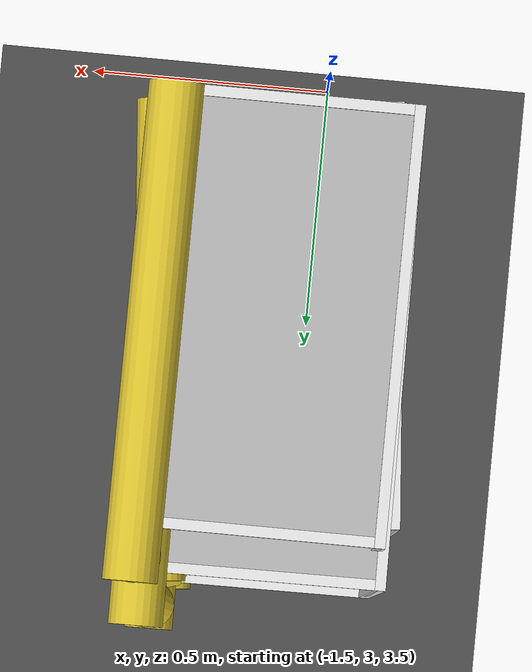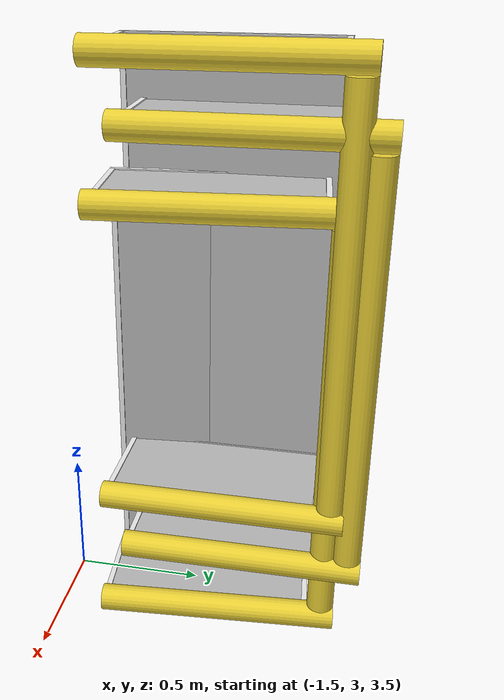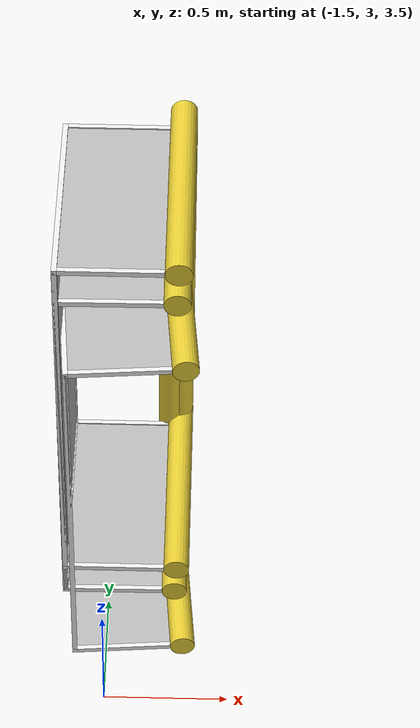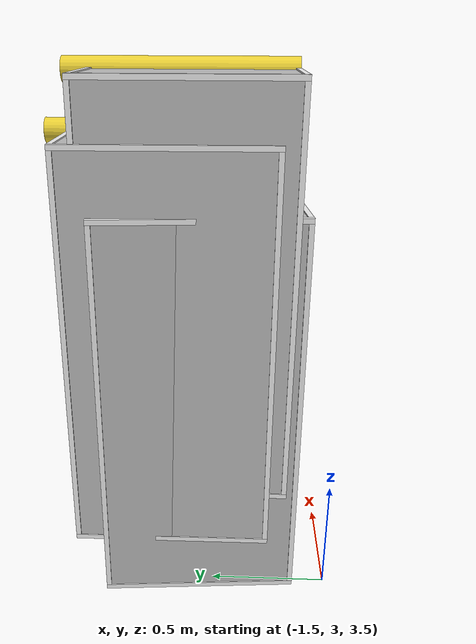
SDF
<sdf version="1.4">
 <world name="default">
  <model name="ground_plane">
   <static>1</static>
   <link name="link">
    <collision name="collision">
     <geometry><plane><normal>0 0 1</normal><size>100 100</size></plane></geometry>
     <surface><friction><ode><mu>100</mu><mu2>50</mu2></ode></friction></surface>
    </collision>
    <visual name="visual">
     <cast_shadows>0</cast_shadows>
     <geometry><plane><normal>0 0 1</normal><size>100 100</size></plane></geometry>
     <material>
      <script><uri>file://media/materials/scripts/gazebo.material</uri><name>Gazebo/Grey</name></script>
     </material>
    </visual>
    <velocity_decay><linear>0</linear><angular>0</angular></velocity_decay>
   </link>
  </model>
  <model name="asphalt_plane_0">
   <static>1</static>
   <link name="link">
    <collision name="collision"><geometry><box><size>20 20 0.1</size></box></geometry></collision>
    <visual name="visual">
     <cast_shadows>0</cast_shadows>
     <geometry><box><size>20 20 0.1</size></box></geometry>
     <material>
      <script>
       <uri>model://asphalt_plane/materials/scripts</uri>
       <uri>model://asphalt_plane/materials/textures</uri>
       <name>vrc/asphalt</name>
      </script>
     </material>
    </visual>
    <velocity_decay><linear>0</linear><angular>0</angular></velocity_decay>
   </link>
   <pose>-0.08673 -0.042897 0 0 -0 0</pose>
  </model>
  <model name="RoboCup 2014 SPL Goal_1">
   <static>1</static>
   <link name="left_post">
    <pose>0 0.8 0.45 0 -0 0</pose>
    <collision name="collision">
     <geometry><cylinder><radius>0.05</radius><length>0.9</length></cylinder></geometry>
    </collision>
    <visual name="visual">
     <geometry><cylinder><radius>0.05</radius><length>0.9</length></cylinder></geometry>
     <material>
      <script><uri>file://media/materials/scripts/gazebo.material</uri><name>Gazebo/ZincYellow</name></script>
     </material>
    </visual>
    <velocity_decay><linear>0</linear><angular>0</angular></velocity_decay>
   </link>
   <link name="left_support_horiz_lower">
    <pose>0.24 0.8 0.01 0 -0 0</pose>
    <collision name="collision"><geometry><box><size>0.38 0.02 0.02</size></box></geometry></collision>
    <visual name="visual">
     <geometry><box><size>0.38 0.02 0.02</size></box></geometry>
     <material>
      <script><uri>file://media/materials/scripts/gazebo.material</uri><name>Gazebo/White</name></script>
     </material>
    </visual>
    <velocity_decay><linear>0</linear><angular>0</angular></velocity_decay>
   </link>
   <link name="left_support_horiz_upper">
    <pose>0.24 0.8 0.79 0 -0 0</pose>
    <collision name="collision"><geometry><box><size>0.38 0.02 0.02</size></box></geometry></collision>
    <visual name="visual">
     <geometry><box><size>0.38 0.02 0.02</size></box></geometry>
     <material>
      <script><uri>file://media/materials/scripts/gazebo.material</uri><name>Gazebo/White</name></script>
     </material>
    </visual>
    <velocity_decay><linear>0</linear><angular>0</angular></velocity_decay>
   </link>
   <link name="left_support_vertical">
    <pose>0.44 0.8 0.4 3.14159 1.57079 3.14159</pose>
    <collision name="collision"><geometry><box><size>0.8 0.02 0.02</size></box></geometry></collision>
    <visual name="visual">
     <geometry><box><size>0.8 0.02 0.02</size></box></geometry>
     <material>
      <script><uri>file://media/materials/scripts/gazebo.material</uri><name>Gazebo/White</name></script>
     </material>
    </visual>
    <velocity_decay><linear>0</linear><angular>0</angular></velocity_decay>
   </link>
   <link name="right_support_horiz_lower">
    <pose>0.24 -0.8 0.01 0 -0 0</pose>
    <collision name="collision"><geometry><box><size>0.38 0.02 0.02</size></box></geometry></collision>
    <visual name="visual">
     <geometry><box><size>0.38 0.02 0.02</size></box></geometry>
     <material>
      <script><uri>file://media/materials/scripts/gazebo.material</uri><name>Gazebo/White</name></script>
     </material>
    </visual>
    <velocity_decay><linear>0</linear><angular>0</angular></velocity_decay>
   </link>
   <link name="right_support_horiz_upper">
    <pose>0.24 -0.8 0.79 0 -0 0</pose>
    <collision name="collision"><geometry><box><size>0.38 0.02 0.02</size></box></geometry></collision>
    <visual name="visual">
     <geometry><box><size>0.38 0.02 0.02</size></box></geometry>
     <material>
      <script><uri>file://media/materials/scripts/gazebo.material</uri><name>Gazebo/White</name></script>
     </material>
    </visual>
    <velocity_decay><linear>0</linear><angular>0</angular></velocity_decay>
   </link>
   <link name="right_support_vertical">
    <pose>0.44 -0.8 0.4 3.14159 1.57079 3.14159</pose>
    <collision name="collision"><geometry><box><size>0.8 0.02 0.02</size></box></geometry></collision>
    <visual name="visual">
     <geometry><box><size>0.8 0.02 0.02</size></box></geometry>
     <material>
      <script><uri>file://media/materials/scripts/gazebo.material</uri><name>Gazebo/White</name></script>
     </material>
    </visual>
    <velocity_decay><linear>0</linear><angular>0</angular></velocity_decay>
   </link>
   <link name="center_support_horiz_lower">
    <pose>0.44 0 0.01 3.14159 1.57079 3.14159</pose>
    <collision name="collision"><geometry><box><size>0.02 1.58 0.02</size></box></geometry></collision>
    <visual name="visual">
     <geometry><box><size>0.02 1.58 0.02</size></box></geometry>
     <material>
      <script><uri>file://media/materials/scripts/gazebo.material</uri><name>Gazebo/White</name></script>
     </material>
    </visual>
    <velocity_decay><linear>0</linear><angular>0</angular></velocity_decay>
   </link>
   <link name="center_support_horiz_upper">
    <pose>0.44 0 0.79 3.14159 1.57079 3.14159</pose>
    <collision name="collision"><geometry><box><size>0.02 1.58 0.02</size></box></geometry></collision>
    <visual name="visual">
     <geometry><box><size>0.02 1.58 0.02</size></box></geometry>
     <material>
      <script><uri>file://media/materials/scripts/gazebo.material</uri><name>Gazebo/White</name></script>
     </material>
    </visual>
    <velocity_decay><linear>0</linear><angular>0</angular></velocity_decay>
   </link>
   <link name="right_post">
    <pose>0 -0.8 0.45 0 -0 0</pose>
    <collision name="collision">
     <geometry><cylinder><radius>0.05</radius><length>0.9</length></cylinder></geometry>
    </collision>
    <visual name="visual">
     <geometry><cylinder><radius>0.05</radius><length>0.9</length></cylinder></geometry>
     <material>
      <script><uri>file://media/materials/scripts/gazebo.material</uri><name>Gazebo/ZincYellow</name></script>
     </material>
    </visual>
    <velocity_decay><linear>0</linear><angular>0</angular></velocity_decay>
   </link>
   <link name="crossbar">
    <pose>0 0 0.85 1.57 1.57 1.39418e-13</pose>
    <collision name="collision">
     <geometry><cylinder><radius>0.05</radius><length>1.5</length></cylinder></geometry>
    </collision>
    <visual name="visual">
     <geometry><cylinder><radius>0.05</radius><length>1.5</length></cylinder></geometry>
     <material>
      <script><uri>file://media/materials/scripts/gazebo.material</uri><name>Gazebo/ZincYellow</name></script>
     </material>
    </visual>
    <velocity_decay><linear>0</linear><angular>0</angular></velocity_decay>
   </link>
   <link name="center_net">
    <pose>0.44 0 0.4 0 -0 0</pose>
    <collision name="collision"><geometry><box><size>0.01 1.6 0.8</size></box></geometry></collision>
    <visual name="visual">
     <geometry><box><size>0.01 1.6 0.8</size></box></geometry>
     <material>
      <script>
       <uri>model://robocup09_spl_field/materials/scripts/</uri>
       <uri>model://robocup09_spl_field/materials/textures/</uri>
       <name>RoboCup/Net</name>
      </script>
     </material>
    </visual>
    <velocity_decay><linear>0</linear><angular>0</angular></velocity_decay>
   </link>
   <link name="left_net">
    <pose>0.24 0.8 0.4 0 -0 0</pose>
    <collision name="collision"><geometry><box><size>0.38 0.01 0.76</size></box></geometry></collision>
    <visual name="visual">
     <geometry><box><size>0.38 0.01 0.76</size></box></geometry>
     <material>
      <script>
       <uri>model://robocup09_spl_field/materials/scripts/</uri>
       <uri>model://robocup09_spl_field/materials/textures/</uri>
       <name>RoboCup/Net</name>
      </script>
     </material>
    </visual>
    <velocity_decay><linear>0</linear><angular>0</angular></velocity_decay>
   </link>
   <link name="right_net">
    <pose>0.24 -0.8 0.4 0 -0 0</pose>
    <collision name="collision"><geometry><box><size>0.38 0.01 0.76</size></box></geometry></collision>
    <visual name="visual">
     <geometry><box><size>0.38 0.01 0.76</size></box></geometry>
     <material>
      <script>
       <uri>model://robocup09_spl_field/materials/scripts/</uri>
       <uri>model://robocup09_spl_field/materials/textures/</uri>
       <name>RoboCup/Net</name>
      </script>
     </material>
    </visual>
    <velocity_decay><linear>0</linear><angular>0</angular></velocity_decay>
   </link>
   <pose>-1.2141 3.19957 4.86971 1.56854 -0 3.1404</pose>
  </model>
  <model name="RoboCup 2014 SPL Goal_4">
   <static>1</static>
   <link name="left_post">
    <pose>0 0.8 0.45 0 -0 0</pose>
    <collision name="collision">
     <geometry><cylinder><radius>0.05</radius><length>0.9</length></cylinder></geometry>
    </collision>
    <visual name="visual">
     <geometry><cylinder><radius>0.05</radius><length>0.9</length></cylinder></geometry>
     <material>
      <script><uri>file://media/materials/scripts/gazebo.material</uri><name>Gazebo/ZincYellow</name></script>
     </material>
    </visual>
    <velocity_decay><linear>0</linear><angular>0</angular></velocity_decay>
   </link>
   <link name="left_support_horiz_lower">
    <pose>0.24 0.8 0.01 0 -0 0</pose>
    <collision name="collision"><geometry><box><size>0.38 0.02 0.02</size></box></geometry></collision>
    <visual name="visual">
     <geometry><box><size>0.38 0.02 0.02</size></box></geometry>
     <material>
      <script><uri>file://media/materials/scripts/gazebo.material</uri><name>Gazebo/White</name></script>
     </material>
    </visual>
    <velocity_decay><linear>0</linear><angular>0</angular></velocity_decay>
   </link>
   <link name="left_support_horiz_upper">
    <pose>0.24 0.8 0.79 0 -0 0</pose>
    <collision name="collision"><geometry><box><size>0.38 0.02 0.02</size></box></geometry></collision>
    <visual name="visual">
     <geometry><box><size>0.38 0.02 0.02</size></box></geometry>
     <material>
      <script><uri>file://media/materials/scripts/gazebo.material</uri><name>Gazebo/White</name></script>
     </material>
    </visual>
    <velocity_decay><linear>0</linear><angular>0</angular></velocity_decay>
   </link>
   <link name="left_support_vertical">
    <pose>0.44 0.8 0.4 3.14159 1.57079 3.14159</pose>
    <collision name="collision"><geometry><box><size>0.8 0.02 0.02</size></box></geometry></collision>
    <visual name="visual">
     <geometry><box><size>0.8 0.02 0.02</size></box></geometry>
     <material>
      <script><uri>file://media/materials/scripts/gazebo.material</uri><name>Gazebo/White</name></script>
     </material>
    </visual>
    <velocity_decay><linear>0</linear><angular>0</angular></velocity_decay>
   </link>
   <link name="right_support_horiz_lower">
    <pose>0.24 -0.8 0.01 0 -0 0</pose>
    <collision name="collision"><geometry><box><size>0.38 0.02 0.02</size></box></geometry></collision>
    <visual name="visual">
     <geometry><box><size>0.38 0.02 0.02</size></box></geometry>
     <material>
      <script><uri>file://media/materials/scripts/gazebo.material</uri><name>Gazebo/White</name></script>
     </material>
    </visual>
    <velocity_decay><linear>0</linear><angular>0</angular></velocity_decay>
   </link>
   <link name="right_support_horiz_upper">
    <pose>0.24 -0.8 0.79 0 -0 0</pose>
    <collision name="collision"><geometry><box><size>0.38 0.02 0.02</size></box></geometry></collision>
    <visual name="visual">
     <geometry><box><size>0.38 0.02 0.02</size></box></geometry>
     <material>
      <script><uri>file://media/materials/scripts/gazebo.material</uri><name>Gazebo/White</name></script>
     </material>
    </visual>
    <velocity_decay><linear>0</linear><angular>0</angular></velocity_decay>
   </link>
   <link name="right_support_vertical">
    <pose>0.44 -0.8 0.4 3.14159 1.57079 3.14159</pose>
    <collision name="collision"><geometry><box><size>0.8 0.02 0.02</size></box></geometry></collision>
    <visual name="visual">
     <geometry><box><size>0.8 0.02 0.02</size></box></geometry>
     <material>
      <script><uri>file://media/materials/scripts/gazebo.material</uri><name>Gazebo/White</name></script>
     </material>
    </visual>
    <velocity_decay><linear>0</linear><angular>0</angular></velocity_decay>
   </link>
   <link name="center_support_horiz_lower">
    <pose>0.44 0 0.01 3.14159 1.57079 3.14159</pose>
    <collision name="collision"><geometry><box><size>0.02 1.58 0.02</size></box></geometry></collision>
    <visual name="visual">
     <geometry><box><size>0.02 1.58 0.02</size></box></geometry>
     <material>
      <script><uri>file://media/materials/scripts/gazebo.material</uri><name>Gazebo/White</name></script>
     </material>
    </visual>
    <velocity_decay><linear>0</linear><angular>0</angular></velocity_decay>
   </link>
   <link name="center_support_horiz_upper">
    <pose>0.44 0 0.79 3.14159 1.57079 3.14159</pose>
    <collision name="collision"><geometry><box><size>0.02 1.58 0.02</size></box></geometry></collision>
    <visual name="visual">
     <geometry><box><size>0.02 1.58 0.02</size></box></geometry>
     <material>
      <script><uri>file://media/materials/scripts/gazebo.material</uri><name>Gazebo/White</name></script>
     </material>
    </visual>
    <velocity_decay><linear>0</linear><angular>0</angular></velocity_decay>
   </link>
   <link name="right_post">
    <pose>0 -0.8 0.45 0 -0 0</pose>
    <collision name="collision">
     <geometry><cylinder><radius>0.05</radius><length>0.9</length></cylinder></geometry>
    </collision>
    <visual name="visual">
     <geometry><cylinder><radius>0.05</radius><length>0.9</length></cylinder></geometry>
     <material>
      <script><uri>file://media/materials/scripts/gazebo.material</uri><name>Gazebo/ZincYellow</name></script>
     </material>
    </visual>
    <velocity_decay><linear>0</linear><angular>0</angular></velocity_decay>
   </link>
   <link name="crossbar">
    <pose>0 0 0.85 1.57 1.57 1.39418e-13</pose>
    <collision name="collision">
     <geometry><cylinder><radius>0.05</radius><length>1.5</length></cylinder></geometry>
    </collision>
    <visual name="visual">
     <geometry><cylinder><radius>0.05</radius><length>1.5</length></cylinder></geometry>
     <material>
      <script><uri>file://media/materials/scripts/gazebo.material</uri><name>Gazebo/ZincYellow</name></script>
     </material>
    </visual>
    <velocity_decay><linear>0</linear><angular>0</angular></velocity_decay>
   </link>
   <link name="center_net">
    <pose>0.44 0 0.4 0 -0 0</pose>
    <collision name="collision"><geometry><box><size>0.01 1.6 0.8</size></box></geometry></collision>
    <visual name="visual">
     <geometry><box><size>0.01 1.6 0.8</size></box></geometry>
     <material>
      <script>
       <uri>model://robocup09_spl_field/materials/scripts/</uri>
       <uri>model://robocup09_spl_field/materials/textures/</uri>
       <name>RoboCup/Net</name>
      </script>
     </material>
    </visual>
    <velocity_decay><linear>0</linear><angular>0</angular></velocity_decay>
   </link>
   <link name="left_net">
    <pose>0.24 0.8 0.4 0 -0 0</pose>
    <collision name="collision"><geometry><box><size>0.38 0.01 0.76</size></box></geometry></collision>
    <visual name="visual">
     <geometry><box><size>0.38 0.01 0.76</size></box></geometry>
     <material>
      <script>
       <uri>model://robocup09_spl_field/materials/scripts/</uri>
       <uri>model://robocup09_spl_field/materials/textures/</uri>
       <name>RoboCup/Net</name>
      </script>
     </material>
    </visual>
    <velocity_decay><linear>0</linear><angular>0</angular></velocity_decay>
   </link>
   <link name="right_net">
    <pose>0.24 -0.8 0.4 0 -0 0</pose>
    <collision name="collision"><geometry><box><size>0.38 0.01 0.76</size></box></geometry></collision>
    <visual name="visual">
     <geometry><box><size>0.38 0.01 0.76</size></box></geometry>
     <material>
      <script>
       <uri>model://robocup09_spl_field/materials/scripts/</uri>
       <uri>model://robocup09_spl_field/materials/textures/</uri>
       <name>RoboCup/Net</name>
      </script>
     </material>
    </visual>
    <velocity_decay><linear>0</linear><angular>0</angular></velocity_decay>
   </link>
   <pose>-1.22083 3.27488 4.64825 1.57053 -0.001731 -3.13341</pose>
  </model>
  <model name="RoboCup 2014 SPL Goal_5">
   <static>1</static>
   <link name="left_post">
    <pose>0 0.8 0.45 0 -0 0</pose>
    <collision name="collision">
     <geometry><cylinder><radius>0.05</radius><length>0.9</length></cylinder></geometry>
    </collision>
    <visual name="visual">
     <geometry><cylinder><radius>0.05</radius><length>0.9</length></cylinder></geometry>
     <material>
      <script><uri>file://media/materials/scripts/gazebo.material</uri><name>Gazebo/ZincYellow</name></script>
     </material>
    </visual>
    <velocity_decay><linear>0</linear><angular>0</angular></velocity_decay>
   </link>
   <link name="left_support_horiz_lower">
    <pose>0.24 0.8 0.01 0 -0 0</pose>
    <collision name="collision"><geometry><box><size>0.38 0.02 0.02</size></box></geometry></collision>
    <visual name="visual">
     <geometry><box><size>0.38 0.02 0.02</size></box></geometry>
     <material>
      <script><uri>file://media/materials/scripts/gazebo.material</uri><name>Gazebo/White</name></script>
     </material>
    </visual>
    <velocity_decay><linear>0</linear><angular>0</angular></velocity_decay>
   </link>
   <link name="left_support_horiz_upper">
    <pose>0.24 0.8 0.79 0 -0 0</pose>
    <collision name="collision"><geometry><box><size>0.38 0.02 0.02</size></box></geometry></collision>
    <visual name="visual">
     <geometry><box><size>0.38 0.02 0.02</size></box></geometry>
     <material>
      <script><uri>file://media/materials/scripts/gazebo.material</uri><name>Gazebo/White</name></script>
     </material>
    </visual>
    <velocity_decay><linear>0</linear><angular>0</angular></velocity_decay>
   </link>
   <link name="left_support_vertical">
    <pose>0.44 0.8 0.4 3.14159 1.57079 3.14159</pose>
    <collision name="collision"><geometry><box><size>0.8 0.02 0.02</size></box></geometry></collision>
    <visual name="visual">
     <geometry><box><size>0.8 0.02 0.02</size></box></geometry>
     <material>
      <script><uri>file://media/materials/scripts/gazebo.material</uri><name>Gazebo/White</name></script>
     </material>
    </visual>
    <velocity_decay><linear>0</linear><angular>0</angular></velocity_decay>
   </link>
   <link name="right_support_horiz_lower">
    <pose>0.24 -0.8 0.01 0 -0 0</pose>
    <collision name="collision"><geometry><box><size>0.38 0.02 0.02</size></box></geometry></collision>
    <visual name="visual">
     <geometry><box><size>0.38 0.02 0.02</size></box></geometry>
     <material>
      <script><uri>file://media/materials/scripts/gazebo.material</uri><name>Gazebo/White</name></script>
     </material>
    </visual>
    <velocity_decay><linear>0</linear><angular>0</angular></velocity_decay>
   </link>
   <link name="right_support_horiz_upper">
    <pose>0.24 -0.8 0.79 0 -0 0</pose>
    <collision name="collision"><geometry><box><size>0.38 0.02 0.02</size></box></geometry></collision>
    <visual name="visual">
     <geometry><box><size>0.38 0.02 0.02</size></box></geometry>
     <material>
      <script><uri>file://media/materials/scripts/gazebo.material</uri><name>Gazebo/White</name></script>
     </material>
    </visual>
    <velocity_decay><linear>0</linear><angular>0</angular></velocity_decay>
   </link>
   <link name="right_support_vertical">
    <pose>0.44 -0.8 0.4 3.14159 1.57079 3.14159</pose>
    <collision name="collision"><geometry><box><size>0.8 0.02 0.02</size></box></geometry></collision>
    <visual name="visual">
     <geometry><box><size>0.8 0.02 0.02</size></box></geometry>
     <material>
      <script><uri>file://media/materials/scripts/gazebo.material</uri><name>Gazebo/White</name></script>
     </material>
    </visual>
    <velocity_decay><linear>0</linear><angular>0</angular></velocity_decay>
   </link>
   <link name="center_support_horiz_lower">
    <pose>0.44 0 0.01 3.14159 1.57079 3.14159</pose>
    <collision name="collision"><geometry><box><size>0.02 1.58 0.02</size></box></geometry></collision>
    <visual name="visual">
     <geometry><box><size>0.02 1.58 0.02</size></box></geometry>
     <material>
      <script><uri>file://media/materials/scripts/gazebo.material</uri><name>Gazebo/White</name></script>
     </material>
    </visual>
    <velocity_decay><linear>0</linear><angular>0</angular></velocity_decay>
   </link>
   <link name="center_support_horiz_upper">
    <pose>0.44 0 0.79 3.14159 1.57079 3.14159</pose>
    <collision name="collision"><geometry><box><size>0.02 1.58 0.02</size></box></geometry></collision>
    <visual name="visual">
     <geometry><box><size>0.02 1.58 0.02</size></box></geometry>
     <material>
      <script><uri>file://media/materials/scripts/gazebo.material</uri><name>Gazebo/White</name></script>
     </material>
    </visual>
    <velocity_decay><linear>0</linear><angular>0</angular></velocity_decay>
   </link>
   <link name="right_post">
    <pose>0 -0.8 0.45 0 -0 0</pose>
    <collision name="collision">
     <geometry><cylinder><radius>0.05</radius><length>0.9</length></cylinder></geometry>
    </collision>
    <visual name="visual">
     <geometry><cylinder><radius>0.05</radius><length>0.9</length></cylinder></geometry>
     <material>
      <script><uri>file://media/materials/scripts/gazebo.material</uri><name>Gazebo/ZincYellow</name></script>
     </material>
    </visual>
    <velocity_decay><linear>0</linear><angular>0</angular></velocity_decay>
   </link>
   <link name="crossbar">
    <pose>0 0 0.85 1.57 1.57 1.39418e-13</pose>
    <collision name="collision">
     <geometry><cylinder><radius>0.05</radius><length>1.5</length></cylinder></geometry>
    </collision>
    <visual name="visual">
     <geometry><cylinder><radius>0.05</radius><length>1.5</length></cylinder></geometry>
     <material>
      <script><uri>file://media/materials/scripts/gazebo.material</uri><name>Gazebo/ZincYellow</name></script>
     </material>
    </visual>
    <velocity_decay><linear>0</linear><angular>0</angular></velocity_decay>
   </link>
   <link name="center_net">
    <pose>0.44 0 0.4 0 -0 0</pose>
    <collision name="collision"><geometry><box><size>0.01 1.6 0.8</size></box></geometry></collision>
    <visual name="visual">
     <geometry><box><size>0.01 1.6 0.8</size></box></geometry>
     <material>
      <script>
       <uri>model://robocup09_spl_field/materials/scripts/</uri>
       <uri>model://robocup09_spl_field/materials/textures/</uri>
       <name>RoboCup/Net</name>
      </script>
     </material>
    </visual>
    <velocity_decay><linear>0</linear><angular>0</angular></velocity_decay>
   </link>
   <link name="left_net">
    <pose>0.24 0.8 0.4 0 -0 0</pose>
    <collision name="collision"><geometry><box><size>0.38 0.01 0.76</size></box></geometry></collision>
    <visual name="visual">
     <geometry><box><size>0.38 0.01 0.76</size></box></geometry>
     <material>
      <script>
       <uri>model://robocup09_spl_field/materials/scripts/</uri>
       <uri>model://robocup09_spl_field/materials/textures/</uri>
       <name>RoboCup/Net</name>
      </script>
     </material>
    </visual>
    <velocity_decay><linear>0</linear><angular>0</angular></velocity_decay>
   </link>
   <link name="right_net">
    <pose>0.24 -0.8 0.4 0 -0 0</pose>
    <collision name="collision"><geometry><box><size>0.38 0.01 0.76</size></box></geometry></collision>
    <visual name="visual">
     <geometry><box><size>0.38 0.01 0.76</size></box></geometry>
     <material>
      <script>
       <uri>model://robocup09_spl_field/materials/scripts/</uri>
       <uri>model://robocup09_spl_field/materials/textures/</uri>
       <name>RoboCup/Net</name>
      </script>
     </material>
    </visual>
    <velocity_decay><linear>0</linear><angular>0</angular></velocity_decay>
   </link>
   <pose>-1.18512 3.19069 4.4 1.57064 0.00012 -3.06049</pose>
  </model>
 </world>
</sdf>
